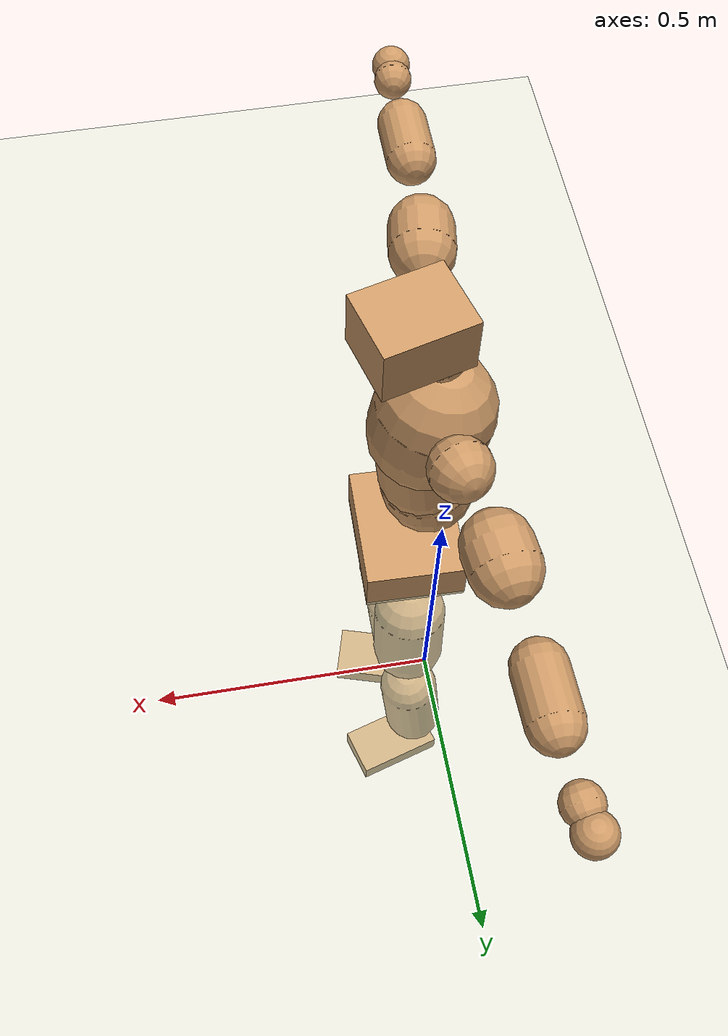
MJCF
<mujoco model="humanoid">
  <compiler coordinate="local" angle="radian"/>
  <default>
    <joint damping="0.0" armature="0.01" stiffness="0.0" limited="true"/>
    <geom conaffinity="1" condim="3" contype="7" margin="0.001" rgba="0.8 0.6 .4 1"/>
  </default>
  <asset>
    <texture type="skybox" builtin="gradient" rgb1=".4 .5 .6" rgb2="0 0 0" width="100" height="100"/>
    <texture builtin="flat" height="1278" mark="cross" markrgb="1 1 1" name="texgeom" random="0.01" rgb1="0.8 0.6 0.4" rgb2="0.8 0.6 0.4" type="cube" width="127"/>
    <texture builtin="checker" height="100" name="texplane" rgb1="0 0 0" rgb2="0.8 0.8 0.8" type="2d" width="100"/>
    <material name="MatPlane" reflectance="0.5" shininess="1" specular="1" texrepeat="60 60" texture="texplane"/>
    <material name="geom" texture="texgeom" texuniform="true"/>
  </asset>
  <worldbody>
    <light cutoff="100" diffuse="1 1 1" dir="-0 0 -1.3" directional="true" exponent="1" pos="0 0 1.3" specular=".1 .1 .1"/>
    <geom conaffinity="1" condim="3" name="floor" pos="0 0 0" rgba="0.8 0.9 0.8 1" size="100 100 .2" type="plane" material="MatPlane"/>
    <body name="Pelvis" pos="-0.0001 -0.2533 0.044">
      <freejoint name="Pelvis"/>
      <geom type="box" contype="1" conaffinity="1" density="5359.375339" pos="-0.0128 0.0003 -0.0078" size="0.0954 0.1195 0.0469" quat="0.9999 0.0000 0.0000 -0.0135" name="Pelvis"/>
      <body name="L_Hip" pos="-0.0139 0.0699 -0.0814">
        <joint name="L_Hip_x" type="hinge" pos="0 0 0" axis="1 0 0" stiffness="1600" damping="160" armature="0.02" range="-180.0000 180.0000"/>
        <joint name="L_Hip_y" type="hinge" pos="0 0 0" axis="0 1 0" stiffness="1600" damping="160" armature="0.02" range="-180.0000 180.0000"/>
        <joint name="L_Hip_z" type="hinge" pos="0 0 0" axis="0 0 1" stiffness="1600" damping="160" armature="0.02" range="-180.0000 180.0000"/>
        <geom type="capsule" contype="1" conaffinity="1" density="2040.816327" size="0.0715" fromto="0.0008 0.0110 -0.1009 0.0019 0.0259 -0.2379" name="L_Hip"/>
        <body name="L_Knee" pos="0.0027 0.0369 -0.3388">
          <joint name="L_Knee_x" type="hinge" pos="0 0 0" axis="1 0 0" stiffness="1600" damping="160" armature="0.02" range="-180.0000 180.0000"/>
          <joint name="L_Knee_y" type="hinge" pos="0 0 0" axis="0 1 0" stiffness="1600" damping="160" armature="0.02" range="-180.0000 180.0000"/>
          <joint name="L_Knee_z" type="hinge" pos="0 0 0" axis="0 0 1" stiffness="1600" damping="160" armature="0.02" range="-180.0000 180.0000"/>
          <geom type="capsule" contype="1" conaffinity="1" density="1234.567901" size="0.0612" fromto="-0.0096 -0.0038 -0.0906 -0.0305 -0.0121 -0.2875" name="L_Knee"/>
          <body name="L_Ankle" pos="-0.0401 -0.0159 -0.3782">
            <joint name="L_Ankle_x" type="hinge" pos="0 0 0" axis="1 0 0" stiffness="1600" damping="160" armature="0.02" range="-180.0000 180.0000"/>
            <joint name="L_Ankle_y" type="hinge" pos="0 0 0" axis="0 1 0" stiffness="1600" damping="160" armature="0.02" range="-180.0000 180.0000"/>
            <joint name="L_Ankle_z" type="hinge" pos="0 0 0" axis="0 0 1" stiffness="1600" damping="160" armature="0.02" range="-180.0000 180.0000"/>
            <geom type="box" contype="1" conaffinity="1" density="999.999998" pos="0.0594 0.0171 -0.0278" size="0.0906 0.0513 0.0213" quat="0.9902 0.0000 0.0000 0.1397" name="L_Ankle"/>
            <body name="L_Toe" pos="0.1187 0.0342 -0.0555">
              <joint name="L_Toe_x" type="hinge" pos="0 0 0" axis="1 0 0" stiffness="1000" damping="100" armature="0.02" range="-180.0000 180.0000"/>
              <joint name="L_Toe_y" type="hinge" pos="0 0 0" axis="0 1 0" stiffness="1000" damping="100" armature="0.02" range="-180.0000 180.0000"/>
              <joint name="L_Toe_z" type="hinge" pos="0 0 0" axis="0 0 1" stiffness="1000" damping="100" armature="0.02" range="-180.0000 180.0000"/>
              <geom type="box" contype="1" conaffinity="1" density="8639917.04194" pos="0.0000 0.0000 0.0259" size="0.0011 0.0025 0.001" quat="0.9894 0.0000 0.0000 0.1451" name="L_Toe"/>
            </body>
          </body>
        </body>
      </body>
      <body name="R_Hip" pos="-0.0101 -0.0716 -0.0873">
        <joint name="R_Hip_x" type="hinge" pos="0 0 0" axis="1 0 0" stiffness="1600" damping="160" armature="0.02" range="-180.0000 180.0000"/>
        <joint name="R_Hip_y" type="hinge" pos="0 0 0" axis="0 1 0" stiffness="1600" damping="160" armature="0.02" range="-180.0000 180.0000"/>
        <joint name="R_Hip_z" type="hinge" pos="0 0 0" axis="0 0 1" stiffness="1600" damping="160" armature="0.02" range="-180.0000 180.0000"/>
        <geom type="capsule" contype="1" conaffinity="1" density="2040.816327" size="0.071" fromto="-0.0025 -0.0103 -0.1004 -0.0059 -0.0245 -0.2383" name="R_Hip"/>
        <body name="R_Knee" pos="-0.0084 -0.0348 -0.3387">
          <joint name="R_Knee_x" type="hinge" pos="0 0 0" axis="1 0 0" stiffness="1600" damping="160" armature="0.02" range="-180.0000 180.0000"/>
          <joint name="R_Knee_y" type="hinge" pos="0 0 0" axis="0 1 0" stiffness="1600" damping="160" armature="0.02" range="-180.0000 180.0000"/>
          <joint name="R_Knee_z" type="hinge" pos="0 0 0" axis="0 0 1" stiffness="1600" damping="160" armature="0.02" range="-180.0000 180.0000"/>
          <geom type="capsule" contype="1" conaffinity="1" density="1234.567901" size="0.0612" fromto="-0.0093 0.0043 -0.0906 -0.0288 0.0132 -0.2800" name="R_Knee"/>
          <body name="R_Ankle" pos="-0.0381 0.0175 -0.3706">
            <joint name="R_Ankle_x" type="hinge" pos="0 0 0" axis="1 0 0" stiffness="1600" damping="160" armature="0.02" range="-180.0000 180.0000"/>
            <joint name="R_Ankle_y" type="hinge" pos="0 0 0" axis="0 1 0" stiffness="1600" damping="160" armature="0.02" range="-180.0000 180.0000"/>
            <joint name="R_Ankle_z" type="hinge" pos="0 0 0" axis="0 0 1" stiffness="1600" damping="160" armature="0.02" range="-180.0000 180.0000"/>
            <geom type="box" contype="1" conaffinity="1" density="999.999997" pos="0.0627 -0.0188 -0.0276" size="0.0876 0.055 0.0211" quat="0.9894 0.0000 0.0000 -0.1450" name="R_Ankle"/>
            <body name="R_Toe" pos="0.1255 -0.0376 -0.0552">
              <joint name="R_Toe_x" type="hinge" pos="0 0 0" axis="1 0 0" stiffness="1000" damping="100" armature="0.02" range="-180.0000 180.0000"/>
              <joint name="R_Toe_y" type="hinge" pos="0 0 0" axis="0 1 0" stiffness="1000" damping="100" armature="0.02" range="-180.0000 180.0000"/>
              <joint name="R_Toe_z" type="hinge" pos="0 0 0" axis="0 0 1" stiffness="1000" damping="100" armature="0.02" range="-180.0000 180.0000"/>
              <geom type="box" contype="1" conaffinity="1" density="7780157.484475" pos="0.0000 0.0000 0.0274" size="0.0012 0.0027 0.001" quat="0.9908 0.0000 0.0000 -0.1356" name="R_Toe"/>
            </body>
          </body>
        </body>
      </body>
      <body name="Torso" pos="-0.0526 0.0038 0.1219">
        <joint name="Torso_x" type="hinge" pos="0 0 0" axis="1 0 0" stiffness="2000" damping="200" armature="0.02" range="-180.0000 180.0000"/>
        <joint name="Torso_y" type="hinge" pos="0 0 0" axis="0 1 0" stiffness="2000" damping="200" armature="0.02" range="-180.0000 180.0000"/>
        <joint name="Torso_z" type="hinge" pos="0 0 0" axis="0 0 1" stiffness="2000" damping="200" armature="0.02" range="-180.0000 180.0000"/>
        <geom type="capsule" contype="1" conaffinity="1" density="2040.816327" size="0.0865" fromto="0.0142 0.0023 0.0853 0.0084 0.0014 0.0502" name="Torso"/>
        <body name="Spine" pos="0.0226 0.0037 0.1355">
          <joint name="Spine_x" type="hinge" pos="0 0 0" axis="1 0 0" stiffness="2000" damping="200" armature="0.02" range="-180.0000 180.0000"/>
          <joint name="Spine_y" type="hinge" pos="0 0 0" axis="0 1 0" stiffness="2000" damping="200" armature="0.02" range="-180.0000 180.0000"/>
          <joint name="Spine_z" type="hinge" pos="0 0 0" axis="0 0 1" stiffness="2000" damping="200" armature="0.02" range="-180.0000 180.0000"/>
          <geom type="capsule" contype="1" conaffinity="1" density="2040.816327" size="0.0849" fromto="0.0089 -0.0037 0.0843 -0.0029 0.0012 -0.0279" name="Spine"/>
          <body name="Chest" pos="0.006 -0.0024 0.0565">
            <joint name="Chest_x" type="hinge" pos="0 0 0" axis="1 0 0" stiffness="2000" damping="200" armature="0.02" range="-180.0000 180.0000"/>
            <joint name="Chest_y" type="hinge" pos="0 0 0" axis="0 1 0" stiffness="2000" damping="200" armature="0.02" range="-180.0000 180.0000"/>
            <joint name="Chest_z" type="hinge" pos="0 0 0" axis="0 0 1" stiffness="2000" damping="200" armature="0.02" range="-180.0000 180.0000"/>
            <geom type="capsule" contype="1" conaffinity="1" density="2040.816327" size="0.1077" fromto="-0.0201 -0.0056 0.1056 -0.0083 -0.0023 0.0433" name="Chest"/>
            <body name="Neck" pos="-0.0427 -0.0116 0.2175">
              <joint name="Neck_x" type="hinge" pos="0 0 0" axis="1 0 0" stiffness="1000" damping="100" armature="0.02" range="-180.0000 180.0000"/>
              <joint name="Neck_y" type="hinge" pos="0 0 0" axis="0 1 0" stiffness="1000" damping="100" armature="0.02" range="-180.0000 180.0000"/>
              <joint name="Neck_z" type="hinge" pos="0 0 0" axis="0 0 1" stiffness="1000" damping="100" armature="0.02" range="-180.0000 180.0000"/>
              <geom type="capsule" contype="1" conaffinity="1" density="1000" size="0.0473" fromto="0.0251 0.0060 0.0424 0.0261 0.0063 0.0441" name="Neck"/>
              <body name="Head" pos="0.0512 0.0123 0.0865">
                <joint name="Head_x" type="hinge" pos="0 0 0" axis="1 0 0" stiffness="1000" damping="100" armature="0.02" range="-180.0000 180.0000"/>
                <joint name="Head_y" type="hinge" pos="0 0 0" axis="0 1 0" stiffness="1000" damping="100" armature="0.02" range="-180.0000 180.0000"/>
                <joint name="Head_z" type="hinge" pos="0 0 0" axis="0 0 1" stiffness="1000" damping="100" armature="0.02" range="-180.0000 180.0000"/>
                <geom type="box" contype="1" conaffinity="1" density="2249.999818" pos="0.0266 0.0071 0.0442" size="0.0829 0.0666 0.0558" quat="0.9914 0.0000 0.0000 0.1306" name="Head"/>
              </body>
            </body>
            <body name="L_Thorax" pos="-0.017 0.0748 0.1157">
              <joint name="L_Thorax_x" type="hinge" pos="0 0 0" axis="1 0 0" stiffness="1000" damping="100" armature="0.02" range="-180.0000 180.0000"/>
              <joint name="L_Thorax_y" type="hinge" pos="0 0 0" axis="0 1 0" stiffness="1000" damping="100" armature="0.02" range="-180.0000 180.0000"/>
              <joint name="L_Thorax_z" type="hinge" pos="0 0 0" axis="0 0 1" stiffness="1000" damping="100" armature="0.02" range="-180.0000 180.0000"/>
              <geom type="capsule" contype="1" conaffinity="1" density="1000" size="0.0568" fromto="-0.0117 0.0650 0.0218 -0.0121 0.0668 0.0224" name="L_Thorax"/>
              <body name="L_Shoulder" pos="-0.0238 0.1318 0.0442">
                <joint name="L_Shoulder_x" type="hinge" pos="0 0 0" axis="1 0 0" stiffness="1000" damping="100" armature="0.02" range="-720.0000 720.0000"/>
                <joint name="L_Shoulder_y" type="hinge" pos="0 0 0" axis="0 1 0" stiffness="1000" damping="100" armature="0.02" range="-720.0000 720.0000"/>
                <joint name="L_Shoulder_z" type="hinge" pos="0 0 0" axis="0 0 1" stiffness="1000" damping="100" armature="0.02" range="-720.0000 720.0000"/>
                <geom type="capsule" contype="1" conaffinity="1" density="1000" size="0.0612" fromto="-0.0105 0.0904 -0.0046 -0.0154 0.1333 -0.0067" name="L_Shoulder"/>
                <body name="L_Elbow" pos="-0.0259 0.2238 -0.0113">
                  <joint name="L_Elbow_x" type="hinge" pos="0 0 0" axis="1 0 0" stiffness="1000" damping="100" armature="0.02" range="-720.0000 720.0000"/>
                  <joint name="L_Elbow_y" type="hinge" pos="0 0 0" axis="0 1 0" stiffness="1000" damping="100" armature="0.02" range="-720.0000 720.0000"/>
                  <joint name="L_Elbow_z" type="hinge" pos="0 0 0" axis="0 0 1" stiffness="1000" damping="100" armature="0.02" range="-720.0000 720.0000"/>
                  <geom type="capsule" contype="1" conaffinity="1" density="1000" size="0.0464" fromto="-0.0007 0.0763 0.0045 -0.0016 0.1716 0.0102" name="L_Elbow"/>
                  <body name="L_Wrist" pos="-0.0023 0.2479 0.0147">
                    <joint name="L_Wrist_x" type="hinge" pos="0 0 0" axis="1 0 0" stiffness="600" damping="60" armature="0.02" range="-180.0000 180.0000"/>
                    <joint name="L_Wrist_y" type="hinge" pos="0 0 0" axis="0 1 0" stiffness="600" damping="60" armature="0.02" range="-180.0000 180.0000"/>
                    <joint name="L_Wrist_z" type="hinge" pos="0 0 0" axis="0 0 1" stiffness="600" damping="60" armature="0.02" range="-180.0000 180.0000"/>
                    <geom type="capsule" contype="1" conaffinity="1" density="1000" size="0.0347" fromto="-0.0074 0.0423 -0.0055 -0.0077 0.0442 -0.0058" name="L_Wrist"/>
                    <body name="L_Hand" pos="-0.0151 0.0865 -0.0113">
                      <joint name="L_Hand_x" type="hinge" pos="0 0 0" axis="1 0 0" stiffness="600" damping="60" armature="0.02" range="-180.0000 180.0000"/>
                      <joint name="L_Hand_y" type="hinge" pos="0 0 0" axis="0 1 0" stiffness="600" damping="60" armature="0.02" range="-180.0000 180.0000"/>
                      <joint name="L_Hand_z" type="hinge" pos="0 0 0" axis="0 0 1" stiffness="600" damping="60" armature="0.02" range="-180.0000 180.0000"/>
                      <geom type="sphere" contype="1" conaffinity="1" density="1000" size="0.0358" pos="0.0000 0.0000 0.0000" name="L_Hand"/>
                    </body>
                  </body>
                </body>
              </body>
            </body>
            <body name="R_Thorax" pos="-0.0254 -0.0868 0.1136">
              <joint name="R_Thorax_x" type="hinge" pos="0 0 0" axis="1 0 0" stiffness="1000" damping="100" armature="0.02" range="-180.0000 180.0000"/>
              <joint name="R_Thorax_y" type="hinge" pos="0 0 0" axis="0 1 0" stiffness="1000" damping="100" armature="0.02" range="-180.0000 180.0000"/>
              <joint name="R_Thorax_z" type="hinge" pos="0 0 0" axis="0 0 1" stiffness="1000" damping="100" armature="0.02" range="-180.0000 180.0000"/>
              <geom type="capsule" contype="1" conaffinity="1" density="1000" size="0.0567" fromto="-0.0066 -0.0606 0.0232 -0.0068 -0.0625 0.0239" name="R_Thorax"/>
              <body name="R_Shoulder" pos="-0.0134 -0.1231 0.0472">
                <joint name="R_Shoulder_x" type="hinge" pos="0 0 0" axis="1 0 0" stiffness="1000" damping="100" armature="0.02" range="-720.0000 720.0000"/>
                <joint name="R_Shoulder_y" type="hinge" pos="0 0 0" axis="0 1 0" stiffness="1000" damping="100" armature="0.02" range="-720.0000 720.0000"/>
                <joint name="R_Shoulder_z" type="hinge" pos="0 0 0" axis="0 0 1" stiffness="1000" damping="100" armature="0.02" range="-720.0000 720.0000"/>
                <geom type="capsule" contype="1" conaffinity="1" density="1000" size="0.0617" fromto="-0.0145 -0.0905 -0.0031 -0.0237 -0.1477 -0.0051" name="R_Shoulder"/>
                <body name="R_Elbow" pos="-0.0382 -0.2382 -0.0083">
                  <joint name="R_Elbow_x" type="hinge" pos="0 0 0" axis="1 0 0" stiffness="1000" damping="100" armature="0.02" range="-720.0000 720.0000"/>
                  <joint name="R_Elbow_y" type="hinge" pos="0 0 0" axis="0 1 0" stiffness="1000" damping="100" armature="0.02" range="-720.0000 720.0000"/>
                  <joint name="R_Elbow_z" type="hinge" pos="0 0 0" axis="0 0 1" stiffness="1000" damping="100" armature="0.02" range="-720.0000 720.0000"/>
                  <geom type="capsule" contype="1" conaffinity="1" density="1000" size="0.0469" fromto="-0.0007 -0.0769 0.0004 -0.0016 -0.1709 0.0008" name="R_Elbow"/>
                  <body name="R_Wrist" pos="-0.0023 -0.2479 0.0012">
                    <joint name="R_Wrist_x" type="hinge" pos="0 0 0" axis="1 0 0" stiffness="600" damping="60" armature="0.02" range="-180.0000 180.0000"/>
                    <joint name="R_Wrist_y" type="hinge" pos="0 0 0" axis="0 1 0" stiffness="600" damping="60" armature="0.02" range="-180.0000 180.0000"/>
                    <joint name="R_Wrist_z" type="hinge" pos="0 0 0" axis="0 0 1" stiffness="600" damping="60" armature="0.02" range="-180.0000 180.0000"/>
                    <geom type="capsule" contype="1" conaffinity="1" density="1000" size="0.036" fromto="-0.0048 -0.0440 -0.0045 -0.0051 -0.0460 -0.0047" name="R_Wrist"/>
                    <body name="R_Hand" pos="-0.0099 -0.09 -0.0093">
                      <joint name="R_Hand_x" type="hinge" pos="0 0 0" axis="1 0 0" stiffness="600" damping="60" armature="0.02" range="-180.0000 180.0000"/>
                      <joint name="R_Hand_y" type="hinge" pos="0 0 0" axis="0 1 0" stiffness="600" damping="60" armature="0.02" range="-180.0000 180.0000"/>
                      <joint name="R_Hand_z" type="hinge" pos="0 0 0" axis="0 0 1" stiffness="600" damping="60" armature="0.02" range="-180.0000 180.0000"/>
                      <geom type="sphere" contype="1" conaffinity="1" density="1000" size="0.0368" pos="0.0000 0.0000 0.0000" name="R_Hand"/>
                    </body>
                  </body>
                </body>
              </body>
            </body>
          </body>
        </body>
      </body>
    </body>
  </worldbody>
  <actuator>
    <motor name="L_Hip_x" joint="L_Hip_x" gear="500"/>
    <motor name="L_Hip_y" joint="L_Hip_y" gear="500"/>
    <motor name="L_Hip_z" joint="L_Hip_z" gear="500"/>
    <motor name="L_Knee_x" joint="L_Knee_x" gear="500"/>
    <motor name="L_Knee_y" joint="L_Knee_y" gear="500"/>
    <motor name="L_Knee_z" joint="L_Knee_z" gear="500"/>
    <motor name="L_Ankle_x" joint="L_Ankle_x" gear="500"/>
    <motor name="L_Ankle_y" joint="L_Ankle_y" gear="500"/>
    <motor name="L_Ankle_z" joint="L_Ankle_z" gear="500"/>
    <motor name="L_Toe_x" joint="L_Toe_x" gear="500"/>
    <motor name="L_Toe_y" joint="L_Toe_y" gear="500"/>
    <motor name="L_Toe_z" joint="L_Toe_z" gear="500"/>
    <motor name="R_Hip_x" joint="R_Hip_x" gear="500"/>
    <motor name="R_Hip_y" joint="R_Hip_y" gear="500"/>
    <motor name="R_Hip_z" joint="R_Hip_z" gear="500"/>
    <motor name="R_Knee_x" joint="R_Knee_x" gear="500"/>
    <motor name="R_Knee_y" joint="R_Knee_y" gear="500"/>
    <motor name="R_Knee_z" joint="R_Knee_z" gear="500"/>
    <motor name="R_Ankle_x" joint="R_Ankle_x" gear="500"/>
    <motor name="R_Ankle_y" joint="R_Ankle_y" gear="500"/>
    <motor name="R_Ankle_z" joint="R_Ankle_z" gear="500"/>
    <motor name="R_Toe_x" joint="R_Toe_x" gear="500"/>
    <motor name="R_Toe_y" joint="R_Toe_y" gear="500"/>
    <motor name="R_Toe_z" joint="R_Toe_z" gear="500"/>
    <motor name="Torso_x" joint="Torso_x" gear="500"/>
    <motor name="Torso_y" joint="Torso_y" gear="500"/>
    <motor name="Torso_z" joint="Torso_z" gear="500"/>
    <motor name="Spine_x" joint="Spine_x" gear="500"/>
    <motor name="Spine_y" joint="Spine_y" gear="500"/>
    <motor name="Spine_z" joint="Spine_z" gear="500"/>
    <motor name="Chest_x" joint="Chest_x" gear="500"/>
    <motor name="Chest_y" joint="Chest_y" gear="500"/>
    <motor name="Chest_z" joint="Chest_z" gear="500"/>
    <motor name="Neck_x" joint="Neck_x" gear="500"/>
    <motor name="Neck_y" joint="Neck_y" gear="500"/>
    <motor name="Neck_z" joint="Neck_z" gear="500"/>
    <motor name="Head_x" joint="Head_x" gear="500"/>
    <motor name="Head_y" joint="Head_y" gear="500"/>
    <motor name="Head_z" joint="Head_z" gear="500"/>
    <motor name="L_Thorax_x" joint="L_Thorax_x" gear="500"/>
    <motor name="L_Thorax_y" joint="L_Thorax_y" gear="500"/>
    <motor name="L_Thorax_z" joint="L_Thorax_z" gear="500"/>
    <motor name="L_Shoulder_x" joint="L_Shoulder_x" gear="500"/>
    <motor name="L_Shoulder_y" joint="L_Shoulder_y" gear="500"/>
    <motor name="L_Shoulder_z" joint="L_Shoulder_z" gear="500"/>
    <motor name="L_Elbow_x" joint="L_Elbow_x" gear="500"/>
    <motor name="L_Elbow_y" joint="L_Elbow_y" gear="500"/>
    <motor name="L_Elbow_z" joint="L_Elbow_z" gear="500"/>
    <motor name="L_Wrist_x" joint="L_Wrist_x" gear="500"/>
    <motor name="L_Wrist_y" joint="L_Wrist_y" gear="500"/>
    <motor name="L_Wrist_z" joint="L_Wrist_z" gear="500"/>
    <motor name="L_Hand_x" joint="L_Hand_x" gear="500"/>
    <motor name="L_Hand_y" joint="L_Hand_y" gear="500"/>
    <motor name="L_Hand_z" joint="L_Hand_z" gear="500"/>
    <motor name="R_Thorax_x" joint="R_Thorax_x" gear="500"/>
    <motor name="R_Thorax_y" joint="R_Thorax_y" gear="500"/>
    <motor name="R_Thorax_z" joint="R_Thorax_z" gear="500"/>
    <motor name="R_Shoulder_x" joint="R_Shoulder_x" gear="500"/>
    <motor name="R_Shoulder_y" joint="R_Shoulder_y" gear="500"/>
    <motor name="R_Shoulder_z" joint="R_Shoulder_z" gear="500"/>
    <motor name="R_Elbow_x" joint="R_Elbow_x" gear="500"/>
    <motor name="R_Elbow_y" joint="R_Elbow_y" gear="500"/>
    <motor name="R_Elbow_z" joint="R_Elbow_z" gear="500"/>
    <motor name="R_Wrist_x" joint="R_Wrist_x" gear="500"/>
    <motor name="R_Wrist_y" joint="R_Wrist_y" gear="500"/>
    <motor name="R_Wrist_z" joint="R_Wrist_z" gear="500"/>
    <motor name="R_Hand_x" joint="R_Hand_x" gear="500"/>
    <motor name="R_Hand_y" joint="R_Hand_y" gear="500"/>
    <motor name="R_Hand_z" joint="R_Hand_z" gear="500"/>
  </actuator>
  <contact>
    <exclude body1="Torso" body2="Chest"/>
    <exclude body1="Head" body2="Chest"/>
    <exclude body1="R_Knee" body2="R_Toe"/>
    <exclude body1="R_Knee" body2="L_Ankle"/>
    <exclude body1="R_Knee" body2="L_Toe"/>
    <exclude body1="L_Knee" body2="L_Toe"/>
    <exclude body1="L_Knee" body2="R_Ankle"/>
    <exclude body1="L_Knee" body2="R_Toe"/>
    <exclude body1="L_Shoulder" body2="Chest"/>
    <exclude body1="R_Shoulder" body2="Chest"/>
  </contact>
  <sensor/>
  <size njmax="700" nconmax="700"/>
</mujoco>
